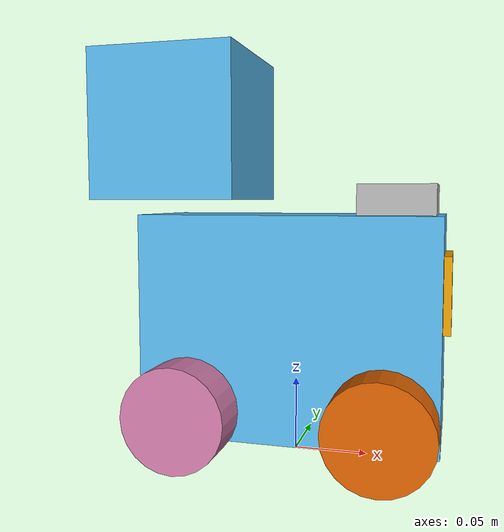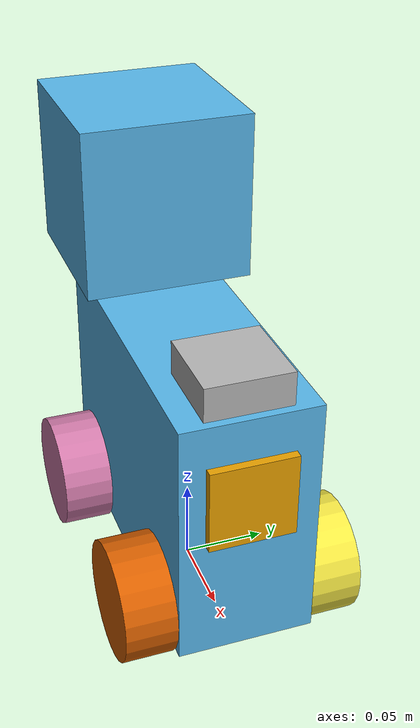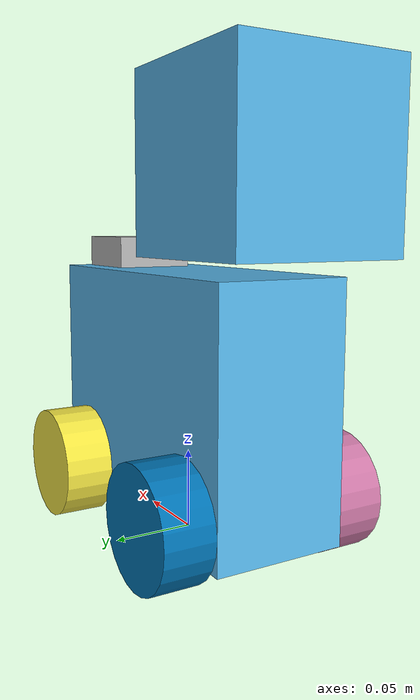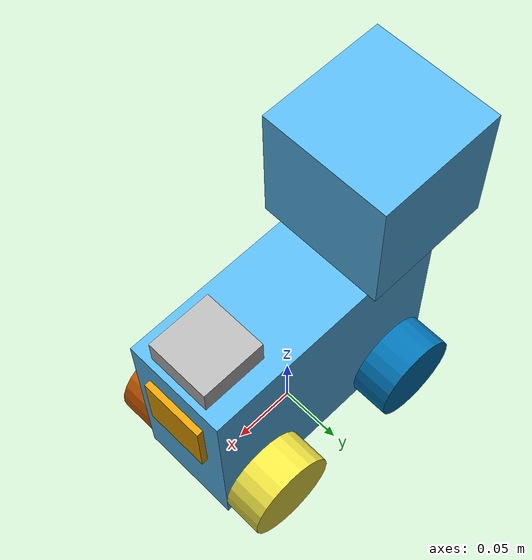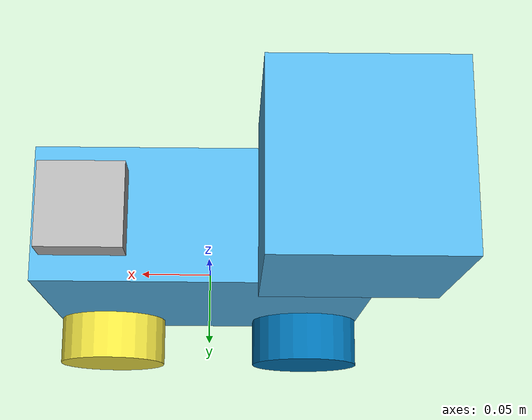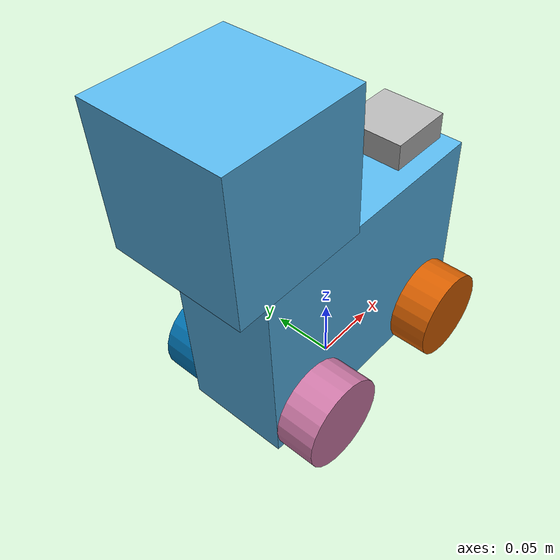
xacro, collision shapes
<?xml version='1.0'?>

<!--roslaunch urdf_tutorial display.launch model:='$(find revvyframework_ros)/urdf/jetson.xacro'-->
<robot name="revvy_jetson" xmlns:xacro="http://www.ros.org/wiki/xacro">
  <!--gazebo plugins-->
  <!--xacro:include filename="$(find revvyframework_ros)/urdf/jetson.gazebo" /-->

  <link name="base_footprint"></link>

  <!--base_link-->
  <link name='base_link'>
    <pose>0 0 0.1 0 0 0</pose>

    <inertial>
      <mass value="1.0"/>
      <origin xyz="0.0 0 0.09" rpy=" 0 0 0"/>
      <inertia
          ixx="0.1" ixy="0" ixz="0"
          iyy="0.1" iyz="0"
          izz="0.1"
      />
    </inertial>

    <collision name='collision'>
      <origin xyz="0 0 0.09" rpy=" 0 0 0"/>
      <geometry>
        <box size=".20 .08 .15"/>
      </geometry>
    </collision>

    <visual name='base_link_visual'>
      <origin xyz="0 0 0.09" rpy=" 0 0 0"/>
      <geometry>
        <!--box size=".20 .08 .15"/-->
        <mesh filename = "package://revvyframework_ros/meshes/revvy_jetbot.dae"/>
      </geometry>
    </visual>

  </link>

  <joint name="base_footprint_joint" type="fixed">
    <origin xyz="0 0 0" rpy="0 0 0" />
    <parent link="base_footprint"/>
    <child link="base_link" />
  </joint>

  <!--IMU-->
  <link name="imu_link">
  </link>

  <joint name="imu_joint" type="fixed">
    <origin xyz="0 0 0.08" rpy="0 0 0" />
    <parent link="base_link"/>
    <child link="imu_link" />
  </joint>

  <!--front left wheel-->
  <link name='front_left_wheel'>
    <inertial>
      <mass value="0.2"/>
      <origin xyz="0.0 0 0" rpy=" 0 1.5708 1.5708"/>
      <inertia
          ixx="0.1" ixy="0" ixz="0"
          iyy="0.1" iyz="0"
          izz="0.1"
      />
    </inertial>

    <collision name='collision'>
      <origin xyz="0.0 0 0" rpy=" 0 1.5708 1.5708"/>
      <geometry>
        <cylinder radius = ".035" length = ".03"/>
      </geometry>
    </collision>

    <visual name='front_left_wheel_visual'>
      <origin xyz="0.0 0 0" rpy=" 0 1.5708 1.5708"/>
      <geometry>
        <!--cylinder radius = ".035" length = ".03"/-->
        <mesh filename = "package://revvyframework_ros/meshes/wheel.dae" scale="1.08 1.08 1.08"/>
      </geometry>
    </visual>
  </link>

  <joint type="continuous" name="front_left_wheel_hinge">
    <origin xyz="0.065 0.055 0.035" rpy="0 0 0"/>
    <parent link="base_link"/>
    <child link="front_left_wheel"/>
    <axis xyz="0 1 0" rpy="0 0 0"/>
    <limit effort="10000" velocity="1000"/>
    <dynamics damping="0.0" friction="0.0"/>
  </joint>

  <!--rear left wheel-->
  <link name='rear_left_wheel'>
    <inertial>
      <mass value="0.2"/>
      <origin xyz="0.0 0 0" rpy=" 0 1.5708 1.5708"/>
      <inertia
          ixx="0.1" ixy="0" ixz="0"
          iyy="0.1" iyz="0"
          izz="0.1"
      />
    </inertial>

    <collision name='collision'>
      <origin xyz="0.0 0 0" rpy=" 0 1.5708 1.5708"/>
      <geometry>
        <cylinder radius = ".035" length = ".03"/>
      </geometry>
    </collision>

    <visual name='rear_left_wheel_visual'>
      <origin xyz="0.0 0 0" rpy=" 0 1.5708 1.5708"/>
      <geometry>
        <!--cylinder radius = ".035" length = ".03"/-->
        <mesh filename = "package://revvyframework_ros/meshes/wheel.dae" scale="1.08 1.08 1.08"/>
      </geometry>
    </visual>
  </link>

  <joint type="continuous" name="rear_left_wheel_hinge">
    <origin xyz="-0.065 0.055 0.035" rpy="0 0 0"/>
    <parent link="base_link"/>
    <child link="rear_left_wheel"/>
    <axis xyz="0 1 0" rpy="0 0 0"/>
    <limit effort="10000" velocity="1000"/>
    <dynamics damping="0.0" friction="0.0"/>
  </joint>

  <!--front right wheel-->
  <link name='front_right_wheel'>
    <inertial>
      <mass value="0.2"/>
      <origin xyz="0.0 0 0" rpy=" 0 1.5708 1.5708"/>
      <inertia
          ixx="0.1" ixy="0" ixz="0"
          iyy="0.1" iyz="0"
          izz="0.1"
      />
    </inertial>

    <collision name='collision'>
      <origin xyz="0.0 0 0" rpy=" 0 1.5708 1.5708"/>
      <geometry>
        <cylinder radius = ".035" length = ".03"/>
      </geometry>
    </collision>

    <visual name='front_right_wheel_visual'>
      <origin xyz="0.0 0 0" rpy=" 0 1.5708 -1.5708"/>
      <geometry>
        <!--cylinder radius = ".035" length = ".03"/-->
        <mesh filename = "package://revvyframework_ros/meshes/wheel.dae" scale="1.08 1.08 1.08"/>
      </geometry>
    </visual>
  </link>

  <joint type="continuous" name="front_right_wheel_hinge">
    <origin xyz="0.065 -0.055 0.035" rpy="0 0 0"/>
    <parent link="base_link"/>
    <child link="front_right_wheel"/>
    <axis xyz="0 1 0" rpy="0 0 0"/>
    <limit effort="10000" velocity="1000"/>
    <dynamics damping="0.0" friction="0.0"/>
  </joint>

  <!--rear right wheel-->
  <link name='rear_right_wheel'>
    <inertial>
      <mass value="0.2"/>
      <origin xyz="0.0 0 0" rpy=" 0 1.5708 1.5708"/>
      <inertia
          ixx="0.1" ixy="0" ixz="0"
          iyy="0.1" iyz="0"
          izz="0.1"
      />
    </inertial>

    <collision name='collision'>
      <origin xyz="0.0 0 0" rpy=" 0 1.5708 1.5708"/>
      <geometry>
        <cylinder radius = ".035" length = ".03"/>
      </geometry>
    </collision>

    <visual name='rear_right_wheel_visual'>
      <origin xyz="0.0 0 0" rpy=" 0 1.5708 -1.5708"/>
      <geometry>
        <!--cylinder radius = ".035" length = ".03"/-->
        <mesh filename = "package://revvyframework_ros/meshes/wheel.dae" scale="1.08 1.08 1.08"/>
      </geometry>
    </visual>
  </link>

  <joint type="continuous" name="rear_right_wheel_hinge">
    <origin xyz="-0.065 -0.055 0.035" rpy="0 0 0"/>
    <parent link="base_link"/>
    <child link="rear_right_wheel"/>
    <axis xyz="0 1 0" rpy="0 0 0"/>
    <limit effort="10000" velocity="1000"/>
    <dynamics damping="0.0" friction="0.0"/>
  </joint>

  <!--RGBD camera-->
  <link name='rgbd_camera_link'>
    <pose>0 0 0 0 0 0</pose>
    <inertial>
      <mass value="0.1"/>
      <origin xyz="0 0 0" rpy=" 0 0 0"/>
      <inertia
          ixx="1e-6" ixy="0" ixz="0"
          iyy="1e-6" iyz="0"
          izz="1e-6"
      />
    </inertial>

    <collision name='collision'>
      <origin xyz="0 0 0" rpy=" 0 0 0"/>
      <geometry>
        <box size=".05 .05 .05"/>
      </geometry>
    </collision>

    <visual name='rgbd_camera_link_visual'>
      <origin xyz="0 0 0" rpy=" 0 0 0"/>
      <geometry>
        <!--box size=".05 .05 .05"/-->
        <mesh filename = "package://revvyframework_ros/meshes/d435.dae"/>
      </geometry>
    </visual>

  </link>

  <joint type="fixed" name="rgbd_camera_joint">
    <origin xyz="0.07 0 0.16" rpy="0 0 0"/>
    <child link="rgbd_camera_link"/>
    <parent link="base_link"/>
    <axis xyz="0 1 0" rpy="0 0 0"/>
  </joint>

  <link name="rgbd_camera_depth_frame">
  </link>

  <joint type="fixed" name="rgbd_camera_depth_joint">
    <origin xyz="0.01 0.0175 0.0125" rpy="0 0 0"/>
    <child link="rgbd_camera_depth_frame"/>
    <parent link="rgbd_camera_link"/>
  </joint>

  <link name="rgbd_camera_depth_optical_frame">
  </link>

  <joint type="fixed" name="rgbd_camera_depth_optical_joint">
    <origin xyz="0 0 0" rpy="-1.5707 0 -1.5707"/>
    <child link="rgbd_camera_depth_optical_frame"/>
    <parent link="rgbd_camera_depth_frame"/>
  </joint>

  <link name="rgbd_camera_color_frame">
  </link>

  <joint type="fixed" name="rgbd_camera_color_joint">
    <origin xyz="0.01 0.0325 0.0125" rpy="0 0 0"/>
    <child link="rgbd_camera_color_frame"/>
    <parent link="rgbd_camera_link"/>
  </joint>

  <link name="rgbd_camera_color_optical_frame">
  </link>

  <joint type="fixed" name="rgbd_camera_color_optical_joint">
    <origin xyz="0 0 0" rpy="-1.5707 0 -1.5707"/>
    <child link="rgbd_camera_color_optical_frame"/>
    <parent link="rgbd_camera_color_frame"/>
  </joint>

  <link name="rgbd_camera_accel_frame">
  </link>

  <joint type="fixed" name="rgbd_camera_accel_joint">
    <origin xyz="0 0.027 0.013" rpy="0 0 0"/>
    <child link="rgbd_camera_accel_frame"/>
    <parent link="rgbd_camera_link"/>
  </joint>

  <link name="rgbd_camera_accel_optical_frame">
  </link>

  <joint type="fixed" name="rgbd_camera_accel_optical_joint">
    <origin xyz="0 0 0" rpy="-1.5707 0 -1.5707"/>
    <child link="rgbd_camera_accel_optical_frame"/>
    <parent link="rgbd_camera_accel_frame"/>
  </joint>

  <link name="rgbd_camera_gyro_frame">
  </link>

  <joint type="fixed" name="rgbd_camera_gyro_joint">
    <origin xyz="0 0.027 0.013" rpy="0 0 0"/>
    <child link="rgbd_camera_gyro_frame"/>
    <parent link="rgbd_camera_link"/>
  </joint>

  <link name="rgbd_camera_gyro_optical_frame">
  </link>

  <joint type="fixed" name="rgbd_camera_gyro_optical_joint">
    <origin xyz="0 0 0" rpy="-1.5707 0 -1.5707"/>
    <child link="rgbd_camera_gyro_optical_frame"/>
    <parent link="rgbd_camera_gyro_frame"/>
  </joint>

  <!--camera-->
  <link name='main_camera_link'>
    <pose>0 0 0 0 0 0</pose>
    <inertial>
      <mass value="0.1"/>
      <origin xyz="0 0 0" rpy=" 0 0 0"/>
      <inertia
          ixx="1e-6" ixy="0" ixz="0"
          iyy="1e-6" iyz="0"
          izz="1e-6"
      />
    </inertial>

    <collision name='collision'>
      <origin xyz="0 0 0" rpy=" 0 0 0"/>
      <geometry>
        <box size=".05 .05 .05"/>
      </geometry>
    </collision>

    <visual name='main_camera_link_visual'>
      <origin xyz="0 0 0" rpy=" 0 0 0"/>
      <geometry>
        <!--box size=".05 .05 .05"/-->
        <mesh filename = "package://revvyframework_ros/meshes/picam.dae" scale="0.001 0.001 0.001"/>
      </geometry>
    </visual>

  </link>

  <joint type="fixed" name="main_camera_joint">
    <origin xyz="0.08 0 0.115" rpy="-1.5707 0 -1.5707"/>
    <child link="main_camera_link"/>
    <parent link="base_link"/>
    <axis xyz="0 1 0" rpy="0 0 0"/>
  </joint>

    <!--lidar-->
  <link name='scan'>
    <inertial>
      <mass value="1e-5"/>
      <origin xyz="0 0 0" rpy=" 0 0 0"/>
      <inertia
          ixx="1e-6" ixy="0" ixz="0"
          iyy="1e-6" iyz="0"
          izz="1e-6"
      />
    </inertial>

    <collision name='collision'>
      <origin xyz="0 0 0" rpy=" 0 0 0"/>
      <geometry>
        <box size=".1 .1 .1"/>
      </geometry>
    </collision>

    <visual name='scan_visual'>
      <origin xyz="0 0 0" rpy=" 0 0 3.1415"/>
      <geometry>
        <mesh filename = "package://revvyframework_ros/meshes/rplidar.dae"/>
      </geometry>
    </visual>

  </link>

  <joint type="fixed" name="scan_joint">
    <origin xyz="-0.08 0 0.225" rpy="0 0 0"/>
    <child link="scan"/>
    <parent link="base_link"/>
    <axis xyz="0 1 0" rpy="0 0 0"/>
  </joint>

</robot>
